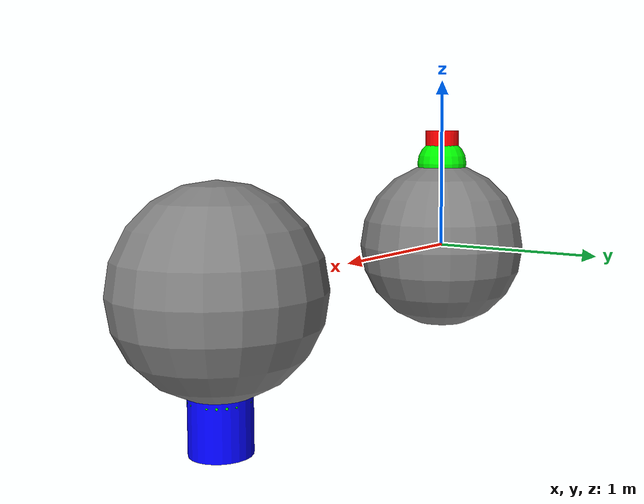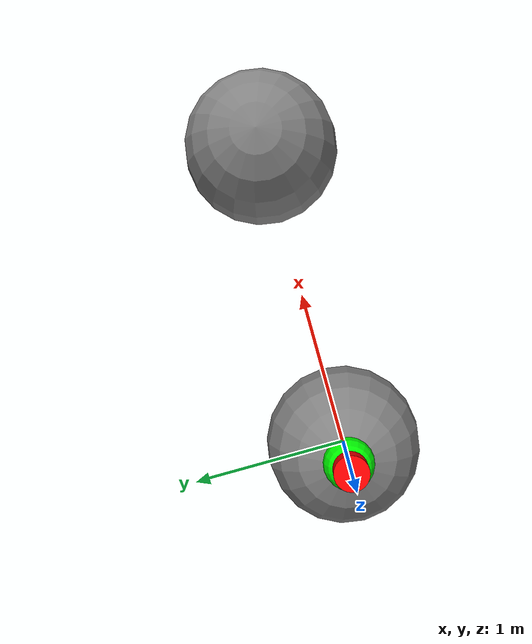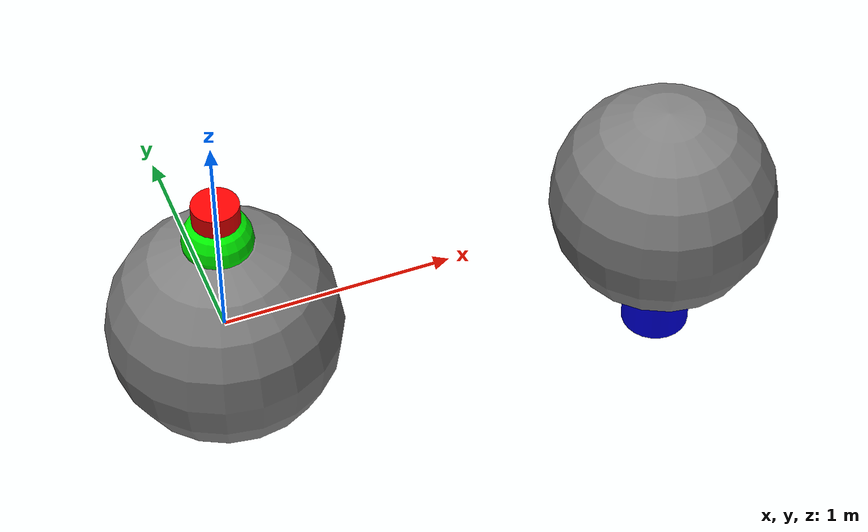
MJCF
<mujoco model="satellites">
  <compiler angle="degree" />
  <option timestep="0.01" gravity="0 0 0" />
  <default>
    <!-- Default geom properties -->
    <geom contype="1" conaffinity="1" friction="0.1" density="1000"/>
  </default>

  <worldbody>
    <!-- Servicing Satellite -->
    <body name="servicer" pos="0 0 0">
      <!-- Main body (e.g., sphere) -->
      <geom type="sphere" size="0.5" rgba="0.5 0.5 0.5 1"/>
      <!-- Docking port protrusion -->
      <geom name="servicer_dock_port" type="cylinder" pos="0 0 0.5" size="0.1 0.2" euler="0 0 0" rgba="1 0 0 1"/>
      <!-- Docking detection site -->
      <site name="servicer_dock_site" pos="0 0 0.5" size="0.15" rgba="0 1 0 1" />
    </body>

    <!-- Target Satellite -->
    <body name="target" pos="2 0 0">
      <!-- Main body (e.g., sphere) -->
      <geom type="sphere" size="0.5" rgba="0.5 0.5 0.5 1"/>
      <!-- Docking cavity (for receiving the docking port) -->
      <geom name="target_dock_cavity" type="cylinder" pos="0 0 -0.5" size="0.15 0.25" euler="0 0 0" rgba="0 0 1 1"/>
      <!-- Docking detection site -->
      <site name="target_dock_site" pos="0 0 -0.5" size="0.15" rgba="0 1 0 1" />
    </body>
  </worldbody>
</mujoco>
